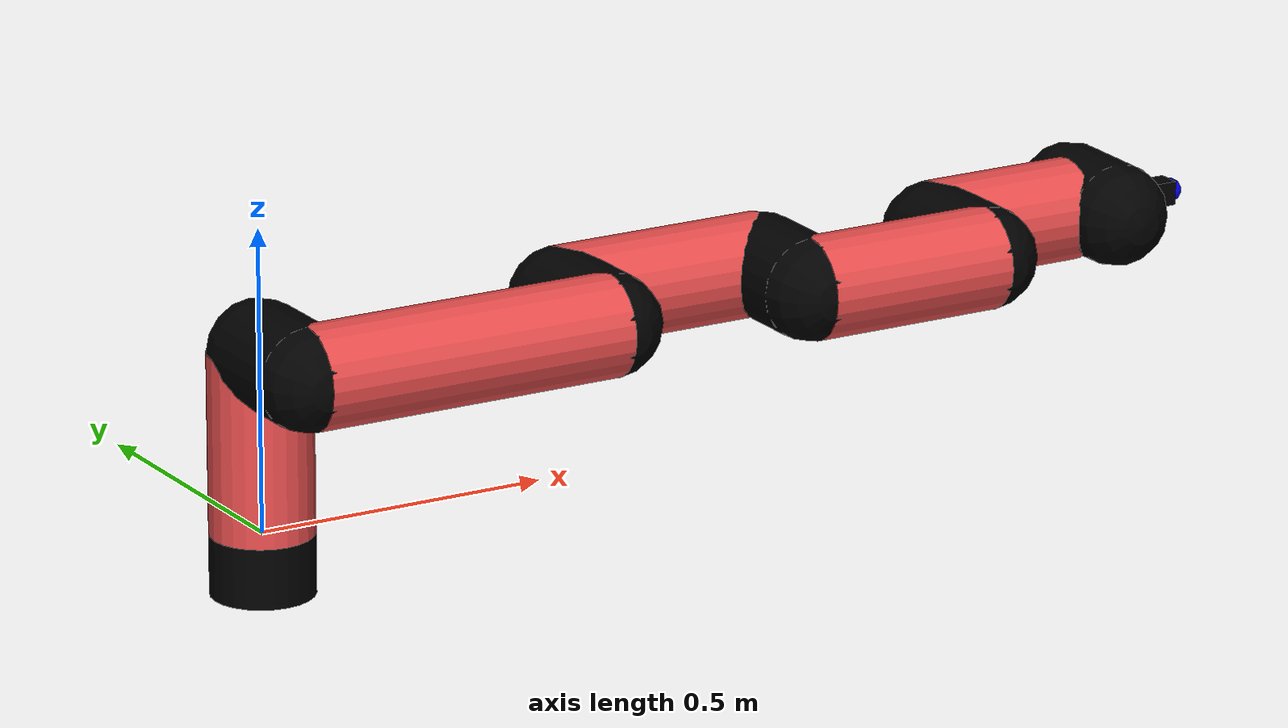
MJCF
<mujoco model="manipulator">
		<compiler angle="degree" coordinate="local" inertiafromgeom="auto" meshdir="meshes/"/>
		<option gravity="0 0 0" integrator="RK4" iterations="30" timestep="0.01"/>

		<default>
		<joint armature="1" limited="true" stiffness="10" damping="15" frictionloss="5.0"/>
		<geom conaffinity="1" condim="3" contype="1" friction=".5 .1 .1" margin="0.002"/>
		<motor ctrllimited="true"/>
		<position ctrllimited="true"/>
		</default>

		<asset>
		<texture builtin="gradient" height="100" rgb1="1.0 1.0 1.0" rgb2="1.0 1.0 1.0" type="skybox" width="100"/>
		<texture builtin="flat" height="32" name="arm_tex" rgb1="0.9 0.3 0.3" type="2d" width="32"/>
		<texture builtin="flat" height="32" name="gripper_tex" rgb1="0.0 0.0 0.0" type="cube" width="32"/>

		<material name="arm_mat" shininess="0.1" specular="0.1" texture="arm_tex"/>
		<material name="gripper_mat" shininess="1" specular="1" texture="gripper_tex"/>
		</asset>

		<worldbody>
		<light cutoff="45" diffuse=".8 .8 .8" dir="0 0.16 -1" directional="false" name="light" pos="0 -2.0 8.0" specular="0.3 0.3 0.3"/>

		<body name="base_link" pos="0 0 -0.1">
		<geom fromto="0 0 0 0 0 0.1" material="arm_mat" name="base_link" rgba="0.0 0.0 0.0 1" size="0.085" type="cylinder"/>
		</body>

		<body name="l1" pos="0 0 0">
<geom fromto="0 0 0 0 0 0.3" material="arm_mat" name="l1" rgba="0.9 0.3 0.3 1" size="0.085" type="cylinder"/>
<geom fromto="0 0 0.3 0 -0.16 0.3" material="arm_mat" name="l1_ex" rgba="0.0 0.0 0.0 1" size="0.085" type="capsule"/>
<joint axis="0 0 1" name="j1" pos="0 0 0" range="-90 90" damping="23.83" frictionloss="11.48"/>

<body name="l2" pos="0 -0.16 0.3">
<geom fromto="0 0 0 0.54 0 0" material="arm_mat" name="l2" rgba="0.9 0.3 0.3 1" size="0.085" type="cylinder"/>
<geom fromto="0.54 0 0 0.54 0.16 0" material="arm_mat" name="l2_ex" rgba="0.0 0.0 0.0 1" size="0.085" type="capsule"/>
<joint axis="0.0 1.0 0.0" name="j2" pos="0 0 0" range="-90 60" damping="34.2" frictionloss="8.68"/>

<body name="l3" pos="0.54 0.16 0">
<geom fromto="0 0 0 0.37 0 0" material="arm_mat" name="l3" rgba="0.9 0.3 0.3 1" size="0.085" type="cylinder"/>
<geom fromto="0.37 0 0 0.37 -0.16 0" material="arm_mat" name="l3_ex" rgba="0.0 0.0 0.0 1" size="0.085" type="capsule"/>
<joint axis="0.0 1.0 0.0" name="j3" pos="0 0 0" range="-30 60" damping="29.78" frictionloss="7.86"/>

<body name="l4" pos="0.37 -0.16 0">
<geom fromto="0 0 0 0.33 0 0" material="arm_mat" name="l4" rgba="0.9 0.3 0.3 1" size="0.085" type="cylinder"/>
<geom fromto="0.33 0 0 0.33 0.16 0" material="arm_mat" name="l4_ex" rgba="0.0 0.0 0.0 1" size="0.085" type="capsule"/>
<joint axis="0.0 1.0 0.0" name="j4" pos="0 0 0" range="-30 60" damping="25.77" frictionloss="11.39"/>

<body name="l5" pos="0.33 0.16 0">
<geom fromto="0 0 0 0.26 0 0" material="arm_mat" name="l5" rgba="0.9 0.3 0.3 1" size="0.085" type="cylinder"/>
<joint axis="0.0 1.0 0.0" name="j5" pos="0 0 0" range="-30 60" damping="23.78" frictionloss="10.59"/>

<body name="gripper" pos="0.26 0 0">
<geom fromto="0.05 -0.07 0 0.05 0.07 0" material="gripper_mat" name="gripper" rgba="0.0 0.0 0.0 1" size="0.085" type="capsule"/><joint axis="1 0 0" name="j6" pos="0 0 0" range="-90 90" damping="15" frictionloss="5.0"/><body name="finger" pos="0.1 0 0">
<geom fromto="0 0.0 0 0.1 0.0 0" material="gripper_mat" name="finger" rgba="0.0 0.0 0.0 1" size="0.020 0.06 0.06" type="box"/>
</body>
<site name="current" pos="0.2 0. 0.0" rgba="0. 0. 1.0 1" size="0.02" type="sphere"/>
</body>
</body>
</body>
</body>
</body>
</body>
</worldbody>
<actuator>
<motor ctrllimited="true" ctrlrange="-1.0 1.0" joint="j1" gear="76.19"/>
<motor ctrllimited="true" ctrlrange="-1.0 1.0" joint="j2" gear="97.91"/>
<motor ctrllimited="true" ctrlrange="-1.0 1.0" joint="j3" gear="85.58"/>
<motor ctrllimited="true" ctrlrange="-1.0 1.0" joint="j4" gear="71.28"/>
<motor ctrllimited="true" ctrlrange="-1.0 1.0" joint="j5" gear="90.24"/>
<motor ctrllimited="true" ctrlrange="-1.0 1.0" joint="j6" gear="80"/>
</actuator>
</mujoco>
